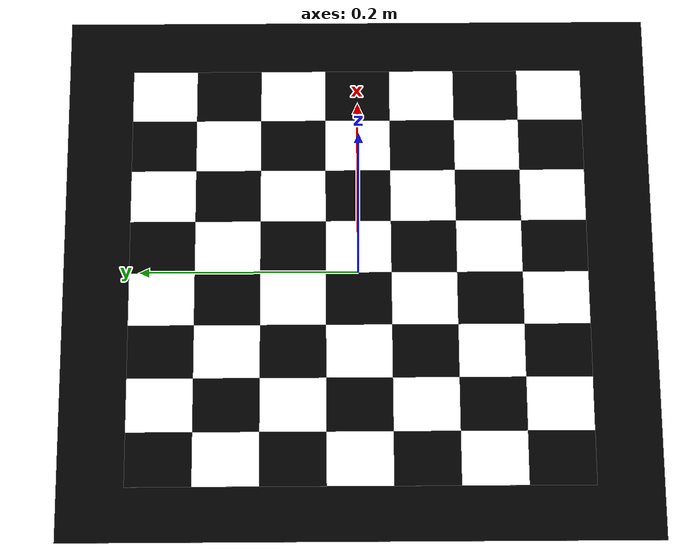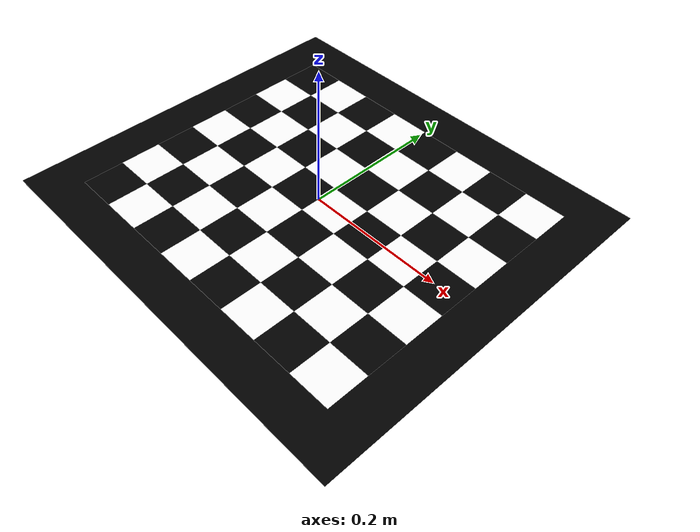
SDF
<?xml version="1.0"?>
<sdf version="1.4">
  <model name="checkerboard_8_7_0_06">
  <static>true</static>
  <link name="checkerboard_8_7_0_06_body">
      <visual name="checker_0_0">
        <pose>-0.21 -0.18 0 0 0 0</pose>
        <geometry>
          <box>
            <size>0.06 0.06 0.0002</size>
          </box>
        </geometry>
        <material>
          <ambient>0 0 0 1</ambient>
          <diffuse>0 0 0 1</diffuse>
          <specular>0.1 0.1 0.1 1</specular>
          <emissive>0 0 0 0</emissive>
        </material>
      </visual>
      <visual name="checker_0_1">
        <pose>-0.21 -0.12 0 0 0 0</pose>
        <geometry>
          <box>
            <size>0.06 0.06 0.0002</size>
          </box>
        </geometry>
        <material>
          <ambient>1 1 1 1</ambient>
          <diffuse>1 1 1 1</diffuse>
          <specular>0.1 0.1 0.1 1</specular>
          <emissive>0 0 0 0</emissive>
        </material>
      </visual>
      <visual name="checker_0_2">
        <pose>-0.21 -0.06 0 0 0 0</pose>
        <geometry>
          <box>
            <size>0.06 0.06 0.0002</size>
          </box>
        </geometry>
        <material>
          <ambient>0 0 0 1</ambient>
          <diffuse>0 0 0 1</diffuse>
          <specular>0.1 0.1 0.1 1</specular>
          <emissive>0 0 0 0</emissive>
        </material>
      </visual>
      <visual name="checker_0_3">
        <pose>-0.21 0.0 0 0 0 0</pose>
        <geometry>
          <box>
            <size>0.06 0.06 0.0002</size>
          </box>
        </geometry>
        <material>
          <ambient>1 1 1 1</ambient>
          <diffuse>1 1 1 1</diffuse>
          <specular>0.1 0.1 0.1 1</specular>
          <emissive>0 0 0 0</emissive>
        </material>
      </visual>
      <visual name="checker_0_4">
        <pose>-0.21 0.060000000000000026 0 0 0 0</pose>
        <geometry>
          <box>
            <size>0.06 0.06 0.0002</size>
          </box>
        </geometry>
        <material>
          <ambient>0 0 0 1</ambient>
          <diffuse>0 0 0 1</diffuse>
          <specular>0.1 0.1 0.1 1</specular>
          <emissive>0 0 0 0</emissive>
        </material>
      </visual>
      <visual name="checker_0_5">
        <pose>-0.21 0.11999999999999997 0 0 0 0</pose>
        <geometry>
          <box>
            <size>0.06 0.06 0.0002</size>
          </box>
        </geometry>
        <material>
          <ambient>1 1 1 1</ambient>
          <diffuse>1 1 1 1</diffuse>
          <specular>0.1 0.1 0.1 1</specular>
          <emissive>0 0 0 0</emissive>
        </material>
      </visual>
      <visual name="checker_0_6">
        <pose>-0.21 0.18000000000000002 0 0 0 0</pose>
        <geometry>
          <box>
            <size>0.06 0.06 0.0002</size>
          </box>
        </geometry>
        <material>
          <ambient>0 0 0 1</ambient>
          <diffuse>0 0 0 1</diffuse>
          <specular>0.1 0.1 0.1 1</specular>
          <emissive>0 0 0 0</emissive>
        </material>
      </visual>
      <visual name="checker_1_0">
        <pose>-0.15 -0.18 0 0 0 0</pose>
        <geometry>
          <box>
            <size>0.06 0.06 0.0002</size>
          </box>
        </geometry>
        <material>
          <ambient>1 1 1 1</ambient>
          <diffuse>1 1 1 1</diffuse>
          <specular>0.1 0.1 0.1 1</specular>
          <emissive>0 0 0 0</emissive>
        </material>
      </visual>
      <visual name="checker_1_1">
        <pose>-0.15 -0.12 0 0 0 0</pose>
        <geometry>
          <box>
            <size>0.06 0.06 0.0002</size>
          </box>
        </geometry>
        <material>
          <ambient>0 0 0 1</ambient>
          <diffuse>0 0 0 1</diffuse>
          <specular>0.1 0.1 0.1 1</specular>
          <emissive>0 0 0 0</emissive>
        </material>
      </visual>
      <visual name="checker_1_2">
        <pose>-0.15 -0.06 0 0 0 0</pose>
        <geometry>
          <box>
            <size>0.06 0.06 0.0002</size>
          </box>
        </geometry>
        <material>
          <ambient>1 1 1 1</ambient>
          <diffuse>1 1 1 1</diffuse>
          <specular>0.1 0.1 0.1 1</specular>
          <emissive>0 0 0 0</emissive>
        </material>
      </visual>
      <visual name="checker_1_3">
        <pose>-0.15 0.0 0 0 0 0</pose>
        <geometry>
          <box>
            <size>0.06 0.06 0.0002</size>
          </box>
        </geometry>
        <material>
          <ambient>0 0 0 1</ambient>
          <diffuse>0 0 0 1</diffuse>
          <specular>0.1 0.1 0.1 1</specular>
          <emissive>0 0 0 0</emissive>
        </material>
      </visual>
      <visual name="checker_1_4">
        <pose>-0.15 0.060000000000000026 0 0 0 0</pose>
        <geometry>
          <box>
            <size>0.06 0.06 0.0002</size>
          </box>
        </geometry>
        <material>
          <ambient>1 1 1 1</ambient>
          <diffuse>1 1 1 1</diffuse>
          <specular>0.1 0.1 0.1 1</specular>
          <emissive>0 0 0 0</emissive>
        </material>
      </visual>
      <visual name="checker_1_5">
        <pose>-0.15 0.11999999999999997 0 0 0 0</pose>
        <geometry>
          <box>
            <size>0.06 0.06 0.0002</size>
          </box>
        </geometry>
        <material>
          <ambient>0 0 0 1</ambient>
          <diffuse>0 0 0 1</diffuse>
          <specular>0.1 0.1 0.1 1</specular>
          <emissive>0 0 0 0</emissive>
        </material>
      </visual>
      <visual name="checker_1_6">
        <pose>-0.15 0.18000000000000002 0 0 0 0</pose>
        <geometry>
          <box>
            <size>0.06 0.06 0.0002</size>
          </box>
        </geometry>
        <material>
          <ambient>1 1 1 1</ambient>
          <diffuse>1 1 1 1</diffuse>
          <specular>0.1 0.1 0.1 1</specular>
          <emissive>0 0 0 0</emissive>
        </material>
      </visual>
      <visual name="checker_2_0">
        <pose>-0.09 -0.18 0 0 0 0</pose>
        <geometry>
          <box>
            <size>0.06 0.06 0.0002</size>
          </box>
        </geometry>
        <material>
          <ambient>0 0 0 1</ambient>
          <diffuse>0 0 0 1</diffuse>
          <specular>0.1 0.1 0.1 1</specular>
          <emissive>0 0 0 0</emissive>
        </material>
      </visual>
      <visual name="checker_2_1">
        <pose>-0.09 -0.12 0 0 0 0</pose>
        <geometry>
          <box>
            <size>0.06 0.06 0.0002</size>
          </box>
        </geometry>
        <material>
          <ambient>1 1 1 1</ambient>
          <diffuse>1 1 1 1</diffuse>
          <specular>0.1 0.1 0.1 1</specular>
          <emissive>0 0 0 0</emissive>
        </material>
      </visual>
      <visual name="checker_2_2">
        <pose>-0.09 -0.06 0 0 0 0</pose>
        <geometry>
          <box>
            <size>0.06 0.06 0.0002</size>
          </box>
        </geometry>
        <material>
          <ambient>0 0 0 1</ambient>
          <diffuse>0 0 0 1</diffuse>
          <specular>0.1 0.1 0.1 1</specular>
          <emissive>0 0 0 0</emissive>
        </material>
      </visual>
      <visual name="checker_2_3">
        <pose>-0.09 0.0 0 0 0 0</pose>
        <geometry>
          <box>
            <size>0.06 0.06 0.0002</size>
          </box>
        </geometry>
        <material>
          <ambient>1 1 1 1</ambient>
          <diffuse>1 1 1 1</diffuse>
          <specular>0.1 0.1 0.1 1</specular>
          <emissive>0 0 0 0</emissive>
        </material>
      </visual>
      <visual name="checker_2_4">
        <pose>-0.09 0.060000000000000026 0 0 0 0</pose>
        <geometry>
          <box>
            <size>0.06 0.06 0.0002</size>
          </box>
        </geometry>
        <material>
          <ambient>0 0 0 1</ambient>
          <diffuse>0 0 0 1</diffuse>
          <specular>0.1 0.1 0.1 1</specular>
          <emissive>0 0 0 0</emissive>
        </material>
      </visual>
      <visual name="checker_2_5">
        <pose>-0.09 0.11999999999999997 0 0 0 0</pose>
        <geometry>
          <box>
            <size>0.06 0.06 0.0002</size>
          </box>
        </geometry>
        <material>
          <ambient>1 1 1 1</ambient>
          <diffuse>1 1 1 1</diffuse>
          <specular>0.1 0.1 0.1 1</specular>
          <emissive>0 0 0 0</emissive>
        </material>
      </visual>
      <visual name="checker_2_6">
        <pose>-0.09 0.18000000000000002 0 0 0 0</pose>
        <geometry>
          <box>
            <size>0.06 0.06 0.0002</size>
          </box>
        </geometry>
        <material>
          <ambient>0 0 0 1</ambient>
          <diffuse>0 0 0 1</diffuse>
          <specular>0.1 0.1 0.1 1</specular>
          <emissive>0 0 0 0</emissive>
        </material>
      </visual>
      <visual name="checker_3_0">
        <pose>-0.03 -0.18 0 0 0 0</pose>
        <geometry>
          <box>
            <size>0.06 0.06 0.0002</size>
          </box>
        </geometry>
        <material>
          <ambient>1 1 1 1</ambient>
          <diffuse>1 1 1 1</diffuse>
          <specular>0.1 0.1 0.1 1</specular>
          <emissive>0 0 0 0</emissive>
        </material>
      </visual>
      <visual name="checker_3_1">
        <pose>-0.03 -0.12 0 0 0 0</pose>
        <geometry>
          <box>
            <size>0.06 0.06 0.0002</size>
          </box>
        </geometry>
        <material>
          <ambient>0 0 0 1</ambient>
          <diffuse>0 0 0 1</diffuse>
          <specular>0.1 0.1 0.1 1</specular>
          <emissive>0 0 0 0</emissive>
        </material>
      </visual>
      <visual name="checker_3_2">
        <pose>-0.03 -0.06 0 0 0 0</pose>
        <geometry>
          <box>
            <size>0.06 0.06 0.0002</size>
          </box>
        </geometry>
        <material>
          <ambient>1 1 1 1</ambient>
          <diffuse>1 1 1 1</diffuse>
          <specular>0.1 0.1 0.1 1</specular>
          <emissive>0 0 0 0</emissive>
        </material>
      </visual>
      <visual name="checker_3_3">
        <pose>-0.03 0.0 0 0 0 0</pose>
        <geometry>
          <box>
            <size>0.06 0.06 0.0002</size>
          </box>
        </geometry>
        <material>
          <ambient>0 0 0 1</ambient>
          <diffuse>0 0 0 1</diffuse>
          <specular>0.1 0.1 0.1 1</specular>
          <emissive>0 0 0 0</emissive>
        </material>
      </visual>
      <visual name="checker_3_4">
        <pose>-0.03 0.060000000000000026 0 0 0 0</pose>
        <geometry>
          <box>
            <size>0.06 0.06 0.0002</size>
          </box>
        </geometry>
        <material>
          <ambient>1 1 1 1</ambient>
          <diffuse>1 1 1 1</diffuse>
          <specular>0.1 0.1 0.1 1</specular>
          <emissive>0 0 0 0</emissive>
        </material>
      </visual>
      <visual name="checker_3_5">
        <pose>-0.03 0.11999999999999997 0 0 0 0</pose>
        <geometry>
          <box>
            <size>0.06 0.06 0.0002</size>
          </box>
        </geometry>
        <material>
          <ambient>0 0 0 1</ambient>
          <diffuse>0 0 0 1</diffuse>
          <specular>0.1 0.1 0.1 1</specular>
          <emissive>0 0 0 0</emissive>
        </material>
      </visual>
      <visual name="checker_3_6">
        <pose>-0.03 0.18000000000000002 0 0 0 0</pose>
        <geometry>
          <box>
            <size>0.06 0.06 0.0002</size>
          </box>
        </geometry>
        <material>
          <ambient>1 1 1 1</ambient>
          <diffuse>1 1 1 1</diffuse>
          <specular>0.1 0.1 0.1 1</specular>
          <emissive>0 0 0 0</emissive>
        </material>
      </visual>
      <visual name="checker_4_0">
        <pose>0.030000000000000027 -0.18 0 0 0 0</pose>
        <geometry>
          <box>
            <size>0.06 0.06 0.0002</size>
          </box>
        </geometry>
        <material>
          <ambient>0 0 0 1</ambient>
          <diffuse>0 0 0 1</diffuse>
          <specular>0.1 0.1 0.1 1</specular>
          <emissive>0 0 0 0</emissive>
        </material>
      </visual>
      <visual name="checker_4_1">
        <pose>0.030000000000000027 -0.12 0 0 0 0</pose>
        <geometry>
          <box>
            <size>0.06 0.06 0.0002</size>
          </box>
        </geometry>
        <material>
          <ambient>1 1 1 1</ambient>
          <diffuse>1 1 1 1</diffuse>
          <specular>0.1 0.1 0.1 1</specular>
          <emissive>0 0 0 0</emissive>
        </material>
      </visual>
      <visual name="checker_4_2">
        <pose>0.030000000000000027 -0.06 0 0 0 0</pose>
        <geometry>
          <box>
            <size>0.06 0.06 0.0002</size>
          </box>
        </geometry>
        <material>
          <ambient>0 0 0 1</ambient>
          <diffuse>0 0 0 1</diffuse>
          <specular>0.1 0.1 0.1 1</specular>
          <emissive>0 0 0 0</emissive>
        </material>
      </visual>
      <visual name="checker_4_3">
        <pose>0.030000000000000027 0.0 0 0 0 0</pose>
        <geometry>
          <box>
            <size>0.06 0.06 0.0002</size>
          </box>
        </geometry>
        <material>
          <ambient>1 1 1 1</ambient>
          <diffuse>1 1 1 1</diffuse>
          <specular>0.1 0.1 0.1 1</specular>
          <emissive>0 0 0 0</emissive>
        </material>
      </visual>
      <visual name="checker_4_4">
        <pose>0.030000000000000027 0.060000000000000026 0 0 0 0</pose>
        <geometry>
          <box>
            <size>0.06 0.06 0.0002</size>
          </box>
        </geometry>
        <material>
          <ambient>0 0 0 1</ambient>
          <diffuse>0 0 0 1</diffuse>
          <specular>0.1 0.1 0.1 1</specular>
          <emissive>0 0 0 0</emissive>
        </material>
      </visual>
      <visual name="checker_4_5">
        <pose>0.030000000000000027 0.11999999999999997 0 0 0 0</pose>
        <geometry>
          <box>
            <size>0.06 0.06 0.0002</size>
          </box>
        </geometry>
        <material>
          <ambient>1 1 1 1</ambient>
          <diffuse>1 1 1 1</diffuse>
          <specular>0.1 0.1 0.1 1</specular>
          <emissive>0 0 0 0</emissive>
        </material>
      </visual>
      <visual name="checker_4_6">
        <pose>0.030000000000000027 0.18000000000000002 0 0 0 0</pose>
        <geometry>
          <box>
            <size>0.06 0.06 0.0002</size>
          </box>
        </geometry>
        <material>
          <ambient>0 0 0 1</ambient>
          <diffuse>0 0 0 1</diffuse>
          <specular>0.1 0.1 0.1 1</specular>
          <emissive>0 0 0 0</emissive>
        </material>
      </visual>
      <visual name="checker_5_0">
        <pose>0.08999999999999997 -0.18 0 0 0 0</pose>
        <geometry>
          <box>
            <size>0.06 0.06 0.0002</size>
          </box>
        </geometry>
        <material>
          <ambient>1 1 1 1</ambient>
          <diffuse>1 1 1 1</diffuse>
          <specular>0.1 0.1 0.1 1</specular>
          <emissive>0 0 0 0</emissive>
        </material>
      </visual>
      <visual name="checker_5_1">
        <pose>0.08999999999999997 -0.12 0 0 0 0</pose>
        <geometry>
          <box>
            <size>0.06 0.06 0.0002</size>
          </box>
        </geometry>
        <material>
          <ambient>0 0 0 1</ambient>
          <diffuse>0 0 0 1</diffuse>
          <specular>0.1 0.1 0.1 1</specular>
          <emissive>0 0 0 0</emissive>
        </material>
      </visual>
      <visual name="checker_5_2">
        <pose>0.08999999999999997 -0.06 0 0 0 0</pose>
        <geometry>
          <box>
            <size>0.06 0.06 0.0002</size>
          </box>
        </geometry>
        <material>
          <ambient>1 1 1 1</ambient>
          <diffuse>1 1 1 1</diffuse>
          <specular>0.1 0.1 0.1 1</specular>
          <emissive>0 0 0 0</emissive>
        </material>
      </visual>
      <visual name="checker_5_3">
        <pose>0.08999999999999997 0.0 0 0 0 0</pose>
        <geometry>
          <box>
            <size>0.06 0.06 0.0002</size>
          </box>
        </geometry>
        <material>
          <ambient>0 0 0 1</ambient>
          <diffuse>0 0 0 1</diffuse>
          <specular>0.1 0.1 0.1 1</specular>
          <emissive>0 0 0 0</emissive>
        </material>
      </visual>
      <visual name="checker_5_4">
        <pose>0.08999999999999997 0.060000000000000026 0 0 0 0</pose>
        <geometry>
          <box>
            <size>0.06 0.06 0.0002</size>
          </box>
        </geometry>
        <material>
          <ambient>1 1 1 1</ambient>
          <diffuse>1 1 1 1</diffuse>
          <specular>0.1 0.1 0.1 1</specular>
          <emissive>0 0 0 0</emissive>
        </material>
      </visual>
      <visual name="checker_5_5">
        <pose>0.08999999999999997 0.11999999999999997 0 0 0 0</pose>
        <geometry>
          <box>
            <size>0.06 0.06 0.0002</size>
          </box>
        </geometry>
        <material>
          <ambient>0 0 0 1</ambient>
          <diffuse>0 0 0 1</diffuse>
          <specular>0.1 0.1 0.1 1</specular>
          <emissive>0 0 0 0</emissive>
        </material>
      </visual>
      <visual name="checker_5_6">
        <pose>0.08999999999999997 0.18000000000000002 0 0 0 0</pose>
        <geometry>
          <box>
            <size>0.06 0.06 0.0002</size>
          </box>
        </geometry>
        <material>
          <ambient>1 1 1 1</ambient>
          <diffuse>1 1 1 1</diffuse>
          <specular>0.1 0.1 0.1 1</specular>
          <emissive>0 0 0 0</emissive>
        </material>
      </visual>
      <visual name="checker_6_0">
        <pose>0.15000000000000002 -0.18 0 0 0 0</pose>
        <geometry>
          <box>
            <size>0.06 0.06 0.0002</size>
          </box>
        </geometry>
        <material>
          <ambient>0 0 0 1</ambient>
          <diffuse>0 0 0 1</diffuse>
          <specular>0.1 0.1 0.1 1</specular>
          <emissive>0 0 0 0</emissive>
        </material>
      </visual>
      <visual name="checker_6_1">
        <pose>0.15000000000000002 -0.12 0 0 0 0</pose>
        <geometry>
          <box>
            <size>0.06 0.06 0.0002</size>
          </box>
        </geometry>
        <material>
          <ambient>1 1 1 1</ambient>
          <diffuse>1 1 1 1</diffuse>
          <specular>0.1 0.1 0.1 1</specular>
          <emissive>0 0 0 0</emissive>
        </material>
      </visual>
      <visual name="checker_6_2">
        <pose>0.15000000000000002 -0.06 0 0 0 0</pose>
        <geometry>
          <box>
            <size>0.06 0.06 0.0002</size>
          </box>
        </geometry>
        <material>
          <ambient>0 0 0 1</ambient>
          <diffuse>0 0 0 1</diffuse>
          <specular>0.1 0.1 0.1 1</specular>
          <emissive>0 0 0 0</emissive>
        </material>
      </visual>
      <visual name="checker_6_3">
        <pose>0.15000000000000002 0.0 0 0 0 0</pose>
        <geometry>
          <box>
            <size>0.06 0.06 0.0002</size>
          </box>
        </geometry>
        <material>
          <ambient>1 1 1 1</ambient>
          <diffuse>1 1 1 1</diffuse>
          <specular>0.1 0.1 0.1 1</specular>
          <emissive>0 0 0 0</emissive>
        </material>
      </visual>
      <visual name="checker_6_4">
        <pose>0.15000000000000002 0.060000000000000026 0 0 0 0</pose>
        <geometry>
          <box>
            <size>0.06 0.06 0.0002</size>
          </box>
        </geometry>
        <material>
          <ambient>0 0 0 1</ambient>
          <diffuse>0 0 0 1</diffuse>
          <specular>0.1 0.1 0.1 1</specular>
          <emissive>0 0 0 0</emissive>
        </material>
      </visual>
      <visual name="checker_6_5">
        <pose>0.15000000000000002 0.11999999999999997 0 0 0 0</pose>
        <geometry>
          <box>
            <size>0.06 0.06 0.0002</size>
          </box>
        </geometry>
        <material>
          <ambient>1 1 1 1</ambient>
          <diffuse>1 1 1 1</diffuse>
          <specular>0.1 0.1 0.1 1</specular>
          <emissive>0 0 0 0</emissive>
        </material>
      </visual>
      <visual name="checker_6_6">
        <pose>0.15000000000000002 0.18000000000000002 0 0 0 0</pose>
        <geometry>
          <box>
            <size>0.06 0.06 0.0002</size>
          </box>
        </geometry>
        <material>
          <ambient>0 0 0 1</ambient>
          <diffuse>0 0 0 1</diffuse>
          <specular>0.1 0.1 0.1 1</specular>
          <emissive>0 0 0 0</emissive>
        </material>
      </visual>
      <visual name="checker_7_0">
        <pose>0.20999999999999996 -0.18 0 0 0 0</pose>
        <geometry>
          <box>
            <size>0.06 0.06 0.0002</size>
          </box>
        </geometry>
        <material>
          <ambient>1 1 1 1</ambient>
          <diffuse>1 1 1 1</diffuse>
          <specular>0.1 0.1 0.1 1</specular>
          <emissive>0 0 0 0</emissive>
        </material>
      </visual>
      <visual name="checker_7_1">
        <pose>0.20999999999999996 -0.12 0 0 0 0</pose>
        <geometry>
          <box>
            <size>0.06 0.06 0.0002</size>
          </box>
        </geometry>
        <material>
          <ambient>0 0 0 1</ambient>
          <diffuse>0 0 0 1</diffuse>
          <specular>0.1 0.1 0.1 1</specular>
          <emissive>0 0 0 0</emissive>
        </material>
      </visual>
      <visual name="checker_7_2">
        <pose>0.20999999999999996 -0.06 0 0 0 0</pose>
        <geometry>
          <box>
            <size>0.06 0.06 0.0002</size>
          </box>
        </geometry>
        <material>
          <ambient>1 1 1 1</ambient>
          <diffuse>1 1 1 1</diffuse>
          <specular>0.1 0.1 0.1 1</specular>
          <emissive>0 0 0 0</emissive>
        </material>
      </visual>
      <visual name="checker_7_3">
        <pose>0.20999999999999996 0.0 0 0 0 0</pose>
        <geometry>
          <box>
            <size>0.06 0.06 0.0002</size>
          </box>
        </geometry>
        <material>
          <ambient>0 0 0 1</ambient>
          <diffuse>0 0 0 1</diffuse>
          <specular>0.1 0.1 0.1 1</specular>
          <emissive>0 0 0 0</emissive>
        </material>
      </visual>
      <visual name="checker_7_4">
        <pose>0.20999999999999996 0.060000000000000026 0 0 0 0</pose>
        <geometry>
          <box>
            <size>0.06 0.06 0.0002</size>
          </box>
        </geometry>
        <material>
          <ambient>1 1 1 1</ambient>
          <diffuse>1 1 1 1</diffuse>
          <specular>0.1 0.1 0.1 1</specular>
          <emissive>0 0 0 0</emissive>
        </material>
      </visual>
      <visual name="checker_7_5">
        <pose>0.20999999999999996 0.11999999999999997 0 0 0 0</pose>
        <geometry>
          <box>
            <size>0.06 0.06 0.0002</size>
          </box>
        </geometry>
        <material>
          <ambient>0 0 0 1</ambient>
          <diffuse>0 0 0 1</diffuse>
          <specular>0.1 0.1 0.1 1</specular>
          <emissive>0 0 0 0</emissive>
        </material>
      </visual>
      <visual name="checker_7_6">
        <pose>0.20999999999999996 0.18000000000000002 0 0 0 0</pose>
        <geometry>
          <box>
            <size>0.06 0.06 0.0002</size>
          </box>
        </geometry>
        <material>
          <ambient>1 1 1 1</ambient>
          <diffuse>1 1 1 1</diffuse>
          <specular>0.1 0.1 0.1 1</specular>
          <emissive>0 0 0 0</emissive>
        </material>
      </visual>
      <visual name="checker_backdrop">
        <pose>0 0 0 0 0 0</pose>
        <geometry>
          <box>
            <size>0.6 0.54 0.0001</size>
          </box>
        </geometry>
        <material>
          <ambient>1 1 1 1</ambient>
          <diffuse>0 0 0 0</diffuse>
          <specular>0.1 0.1 0.1 1</specular>
          <emissive>0 0 0 0</emissive>
        </material>
      </visual>
    </link>
  </model>
</sdf>
